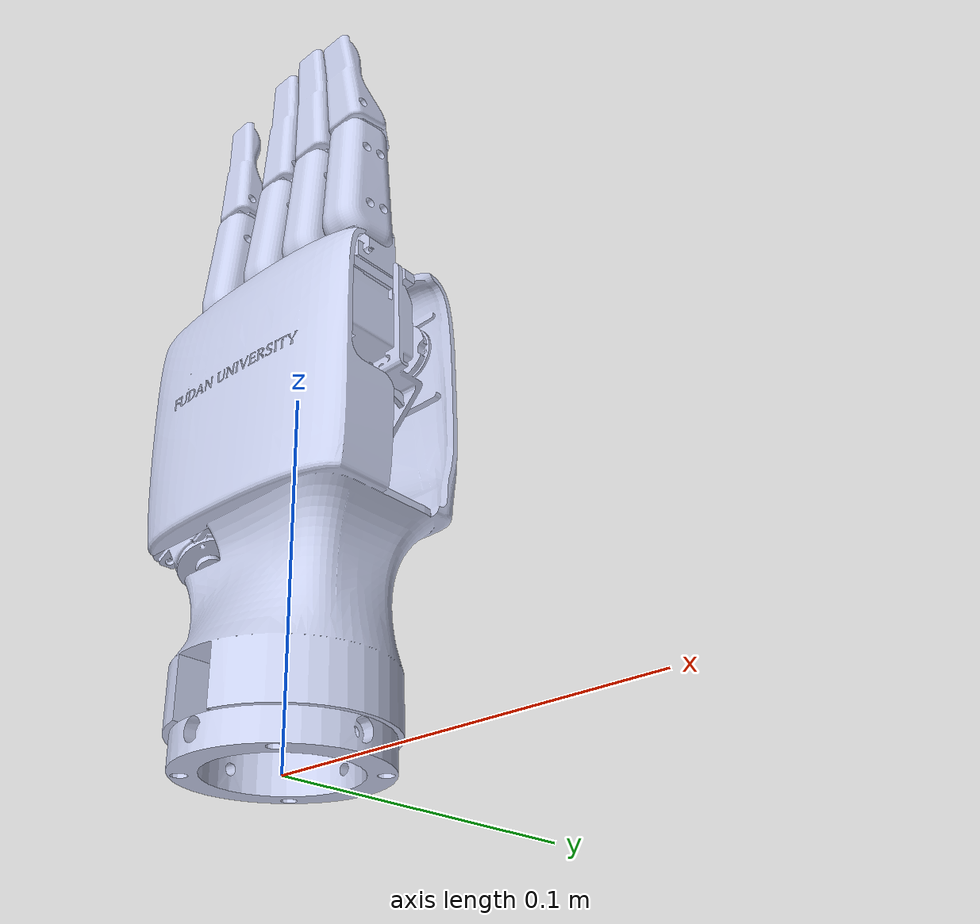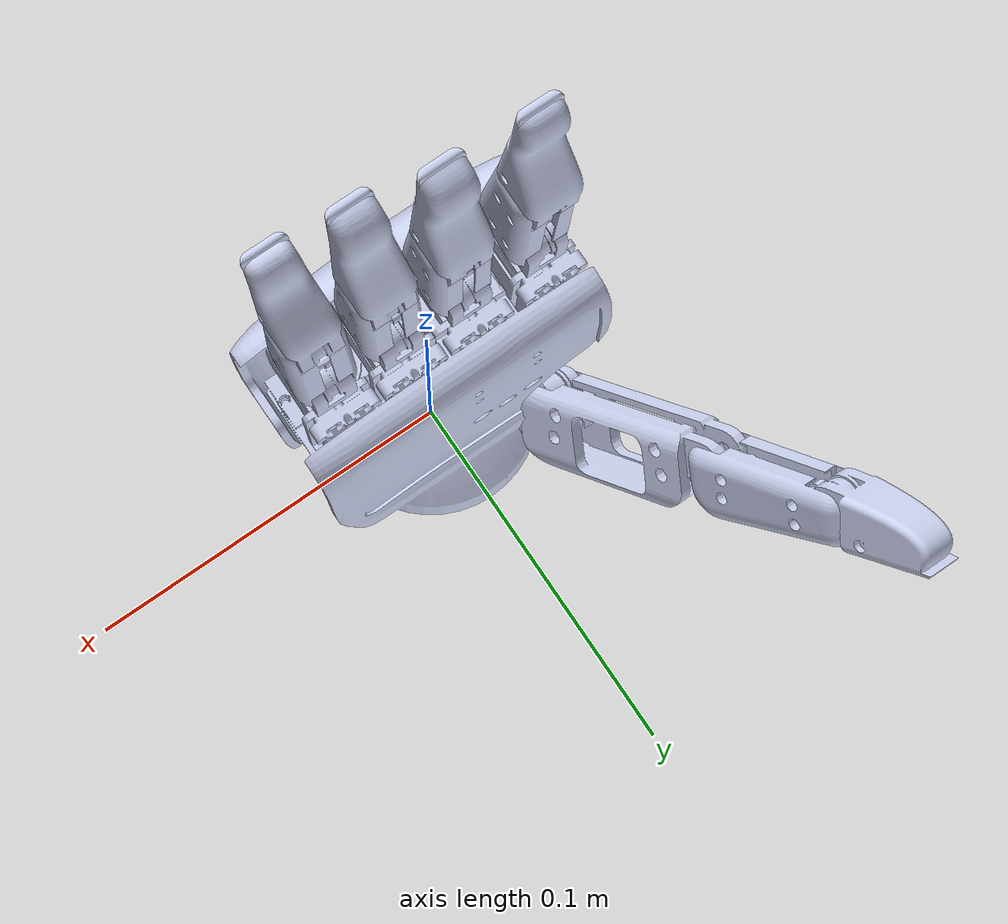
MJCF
<mujoco model="folding_hand_right">
  <default>
    <joint limited="true" damping="1" armature="0.0002" frictionloss="0.01" />
    <geom solimp="0.9 0.95 0.001" solref="0.01 0.1" />
    <motor ctrllimited="true" />
    <equality solref="0.001 2" />
    <default class="visualgeom">
      <geom material="right_hand_material" condim="1" contype="0" conaffinity="0" />
    </default>
  </default>

  <compiler angle="radian" meshdir="meshes" eulerseq="zyx" autolimits="true" />

  <asset>
    <material name="right_hand_material" rgba="0.792156862745098 0.819607843137255 0.933333333333333 1" />
    <material name="default_material" rgba="0.7 0.7 0.7 1" />
    <mesh name="base_link.STL" file="base_link.STL" />
    <mesh name="ff_1.STL" file="ff_1.STL" />
    <mesh name="ff_2.STL" file="ff_2.STL" />
    <mesh name="ff_3.STL" file="ff_3.STL" />
    <mesh name="mf_1.STL" file="mf_1.STL" />
    <mesh name="mf_2.STL" file="mf_2.STL" />
    <mesh name="rf_1.STL" file="rf_1.STL" />
    <mesh name="rf_2.STL" file="rf_2.STL" />
    <mesh name="rf_3.STL" file="rf_3.STL" />
    <mesh name="lf_1.STL" file="lf_1.STL" />
    <mesh name="lf_2.STL" file="lf_2.STL" />
    <mesh name="lf_3.STL" file="lf_3.STL" />
    <mesh name="th_1.STL" file="th_1.STL" />
    <mesh name="th_2.STL" file="th_2.STL" />
    <mesh name="th_3.STL" file="th_3.STL" />
    <mesh name="th_4.STL" file="th_4.STL" />
  </asset>

  <worldbody>
    <body name="base_link" pos="0 0 0" quat="1 0 0 0">
        <inertial pos="0.00276118404102101 -0.00285774223692806 0.0615605479553047" quat="1.0 0.0 0.0 0.0" mass="0.103375780582453" diaginertia="3.11593509491742e-05 4.5003240518971e-05 3.85374175725486e-05" />
        <geom name="base_link_visual_0" pos="0 0 0" quat="1.0 0.0 0.0 0.0" material="right_hand_material" type="mesh" mesh="base_link.STL" />
        <body name="th_1" pos="-0.0079 -0.001045 0.064" quat="1.3492435731251315e-11 -3.6732051033217936e-06 0.9999999999865075 -3.6732051033217936e-06">
          <joint name="th_1_joint" type="hinge" range="0 1.5708" axis="0 1 0" />
          <inertial pos="0.0137524610845284 -0.00388692531484706 -0.00399815691934079" quat="1.0 0.0 0.0 0.0" mass="0.0085862447602651" diaginertia="4.86393167138675e-07 4.66658280466237e-07 5.71403929448824e-07" />
          <geom name="th_1_visual_0" pos="0 0 0" quat="1.0 0.0 0.0 0.0" material="right_hand_material" type="mesh" mesh="th_1.STL" />
          <body name="th_2" pos="0.01364 0.02189 -0.0017481" quat="0.6142010687513615 -0.6142033248420053 0.3503643967958696 0.3503656837585236">
            <joint name="th_2_joint" type="hinge" range="0 1.22173" axis="0 1 0" />
            <inertial pos="0.0127004115106669 0.000899925159810369 0.021103551602678" quat="1.0 0.0 0.0 0.0" mass="0.00484700233885311" diaginertia="7.68869476994104e-07 1.55377159306767e-06 1.02745220346099e-06" />
            <geom name="th_2_visual_0" pos="0 0 0" quat="1.0 0.0 0.0 0.0" material="right_hand_material" type="mesh" mesh="th_2.STL" />
            <body name="th_3" pos="0.036109 -0.0001 0.036072" quat="1.0 0.0 0.0 0.0">
              <joint name="th_3_joint" type="hinge" range="0 3.1415926" axis="0 1 0" />
              <inertial pos="0.00799399367852193 0.00100001344203523 0.0145817963066114" quat="1.0 0.0 0.0 0.0" mass="0.0036807341199548" diaginertia="2.80148855351827e-07 4.75376345730277e-07 3.64623294368966e-07" />
              <geom name="th_3_visual_0" pos="0 0 0" quat="1.0 0.0 0.0 0.0" material="right_hand_material" type="mesh" mesh="th_3.STL" />
              <body name="th_4" pos="0.025359 0.0001 0.024123" quat="1.0 0.0 0.0 0.0">
                <joint name="th_4_joint" type="hinge" range="0 3.1415926" axis="0 1 0" />
                <inertial pos="0.00729876168262759 0.00109078776438153 0.0100298513252921" quat="1.0 0.0 0.0 0.0" mass="0.00281885774752767" diaginertia="1.52207777642241e-07 1.90128277126092e-07 1.03333952624484e-07" />
                <geom name="th_4_visual_0" pos="0 0 0" quat="1.0 0.0 0.0 0.0" material="right_hand_material" type="mesh" mesh="th_4.STL" />
              </body>
            </body>
          </body>
        </body>
        <body name="ff_1" pos="-0.0079 0.003355 0.064" quat="1.3492435731251315e-11 -3.6732051033217936e-06 0.9999999999865075 -3.6732051033217936e-06">
          <joint name="ff_1_joint" type="hinge" range="0 1.5708" axis="0 -1 0" />
          <inertial pos="0.0174276113143449 -0.0025880306270465 -0.051026172322912" quat="1.0 0.0 0.0 0.0" mass="0.00800116450103895" diaginertia="6.16375907626336e-07 7.00497772286988e-07 2.41679032104396e-07" />
          <geom name="ff_1_visual_0" pos="0 0 0" quat="1.0 0.0 0.0 0.0" material="right_hand_material" type="mesh" mesh="ff_1.STL" />
          <body name="ff_2" pos="0.020121 -0.0025 -0.075996" quat="0.5072199822139389 -0.507221845340388 0.49267235871351633 0.49267416840346234">
            <joint name="ff_2_joint" type="hinge" range="0 3.1415926" axis="0 -1 0" />
            <inertial pos="0.0158422609179284 0.00109998639127984 -0.00505523801864458" quat="1.0 0.0 0.0 0.0" mass="0.00368074206825828" diaginertia="1.74635425164805e-07 4.75377212779051e-07 4.70138993869148e-07" />
            <geom name="ff_2_visual_0" pos="0 0 0" quat="1.0 0.0 0.0 0.0" material="right_hand_material" type="mesh" mesh="ff_2.STL" />
            <body name="ff_3" pos="0.035 0.0003 0" quat="1.0 0.0 0.0 0.0">
              <joint name="ff_3_joint" type="hinge" range="0 3.1415926" axis="0 -1 0" />
              <inertial pos="0.0178367732030435 0.000999402970096486 -0.0022372319913799" quat="1.0 0.0 0.0 0.0" mass="0.00404959762041178" diaginertia="9.09224979928097e-08 6.26639694894412e-07 6.23321071228333e-07" />
              <geom name="ff_3_visual_0" pos="0 0 0" quat="1.0 0.0 0.0 0.0" material="right_hand_material" type="mesh" mesh="ff_3.STL" />
            </body>
          </body>
        </body>
        <body name="mf_1" pos="-0.009 0.000855 0.14055" quat="-0.4999999999966269 0.4999981633974483 0.5000018366025516 0.4999999999966269">
          <joint name="mf_1_joint" type="hinge" range="0 3.1415926" axis="0 -1 0" />
          <inertial pos="0.0158422601570955 0.00129998597816512 -0.0050552380419905" quat="1.0 0.0 0.0 0.0" mass="0.00368074201522147" diaginertia="1.74635406284412e-07 4.75377216872989e-07 4.70139016490944e-07" />
          <geom name="mf_1_visual_0" pos="0 0 0" quat="1.0 0.0 0.0 0.0" material="right_hand_material" type="mesh" mesh="mf_1.STL" />
          <body name="mf_2" pos="0.035 0.0006 0" quat="1.0 0.0 0.0 0.0">
            <joint name="mf_2_joint" type="hinge" range="0 3.1415926" axis="0 -1 0" />
            <inertial pos="0.0216169098719861 0.000904419663191184 -0.00217715663925655" quat="1.0 0.0 0.0 0.0" mass="0.00502242897630229" diaginertia="1.06662106139777e-07 9.59144418477493e-07 9.60297532986314e-07" />
            <geom name="mf_2_visual_0" pos="0 0 0" quat="1.0 0.0 0.0 0.0" material="right_hand_material" type="mesh" mesh="mf_2.STL" />
          </body>
        </body>
        <body name="rf_1" pos="-0.0079 0.012155 0.064" quat="1.3492435731251315e-11 -3.6732051033217936e-06 0.9999999999865075 -3.6732051033217936e-06">
          <joint name="rf_1_joint" type="hinge" range="0 1.5708" axis="0 1 0" />
          <inertial pos="-0.0159906401844529 -0.0105600115967382 -0.051516391608172" quat="1.0 0.0 0.0 0.0" mass="0.00800969565306044" diaginertia="6.31281723456019e-07 6.95805064467012e-07 2.40136855524572e-07" />
          <geom name="rf_1_visual_0" pos="0 0 0" quat="1.0 0.0 0.0 0.0" material="right_hand_material" type="mesh" mesh="rf_1.STL" />
          <body name="rf_2" pos="-0.0161 -0.0113 -0.07655" quat="-0.4999999999966269 0.4999981633974483 -0.5000018366025516 -0.4999999999966269">
            <joint name="rf_2_joint" type="hinge" range="0 3.1415926" axis="0 -1 0" />
            <inertial pos="0.0156935934157024 0.00109998713025121 -0.00549943217420239" quat="1.0 0.0 0.0 0.0" mass="0.0036807366322041" diaginertia="1.72904144168496e-07 4.75376819501147e-07 4.71869255601023e-07" />
            <geom name="rf_2_visual_0" pos="0 0 0" quat="1.0 0.0 0.0 0.0" material="right_hand_material" type="mesh" mesh="rf_2.STL" />
            <body name="rf_3" pos="0.034986 0.0004 -0.00098578" quat="1.0 0.0 0.0 0.0">
              <joint name="rf_3_joint" type="hinge" range="0 3.1415926" axis="0 -1 0" />
              <inertial pos="0.018265888885159 0.000904759770016556 -0.00370738520761145" quat="1.0 0.0 0.0 0.0" mass="0.00499342460902789" diaginertia="1.15277519199432e-07 7.52048559497963e-07 7.39864170899251e-07" />
              <geom name="rf_3_visual_0" pos="0 0 0" quat="1.0 0.0 0.0 0.0" material="right_hand_material" type="mesh" mesh="rf_3.STL" />
            </body>
          </body>
        </body>
        <body name="lf_1" pos="-0.0079 0.016555 0.064" quat="1.3492435731251315e-11 -3.6732051033217936e-06 0.9999999999865075 -3.6732051033217936e-06">
          <joint name="lf_1_joint" type="hinge" range="0 1.5708" axis="0 1 0" />
          <inertial pos="-0.0312849510272932 -0.0140312936490971 -0.0502369136670625" quat="1.0 0.0 0.0 0.0" mass="0.00836089652615313" diaginertia="6.91312748704694e-07 9.37745860657525e-07 4.62303222321355e-07" />
          <geom name="lf_1_visual_0" pos="0 0 0" quat="1.0 0.0 0.0 0.0" material="right_hand_material" type="mesh" mesh="lf_1.STL" />
          <body name="lf_2" pos="-0.0329 -0.0157 -0.07655" quat="-0.4999999999966269 0.4999981633974483 -0.5000018366025516 -0.4999999999966269">
            <joint name="lf_2_joint" type="hinge" range="0 3.1415926" axis="0 -1 0" />
            <inertial pos="0.0155519171680911 0.000899988158834936 -0.00588816520024507" quat="1.0 0.0 0.0 0.0" mass="0.0036807319075368" diaginertia="1.71769313017517e-07 4.75376475908662e-07 4.73003192113371e-07" />
            <geom name="lf_2_visual_0" pos="0 0 0" quat="1.0 0.0 0.0 0.0" material="right_hand_material" type="mesh" mesh="lf_2.STL" />
            <body name="lf_3" pos="0.034951 -0.0001 -0.0018559" quat="1.0 0.0 0.0 0.0">
              <joint name="lf_3_joint" type="hinge" range="0 3.1415926" axis="0 -1 0" />
              <inertial pos="0.0136373816869327 0.000999137783326609 -0.00495198647252044" quat="1.0 0.0 0.0 0.0" mass="0.00323429827183613" diaginertia="9.71311360656645e-08 3.22738473259161e-07 2.95824799844708e-07" />
              <geom name="lf_3_visual_0" pos="0 0 0" quat="1.0 0.0 0.0 0.0" material="right_hand_material" type="mesh" mesh="lf_3.STL" />
            </body>
          </body>
        </body>
    </body>
  </worldbody>

  <contact>
    <exclude body1="base_link" body2="th_1" />
    <exclude body1="base_link" body2="ff_1" />
    <exclude body1="base_link" body2="mf_1" />
    <exclude body1="base_link" body2="rf_1" />
    <exclude body1="base_link" body2="lf_1" />

    <exclude body1="base_link" body2="th_2" />
    <exclude body1="base_link" body2="ff_2" />
    <exclude body1="base_link" body2="mf_2" />
    <exclude body1="base_link" body2="rf_2" />
    <exclude body1="base_link" body2="lf_2" />

    <exclude body1="th_1" body2="ff_1" />
    <exclude body1="th_1" body2="mf_1" />
    <exclude body1="th_1" body2="rf_1" />
    <exclude body1="th_1" body2="lf_1" />
    <exclude body1="ff_1" body2="mf_1" />
    <exclude body1="ff_1" body2="rf_1" />
    <exclude body1="ff_1" body2="lf_1" />
    <exclude body1="mf_1" body2="rf_1" />
    <exclude body1="mf_1" body2="lf_1" />
    <exclude body1="rf_1" body2="lf_1" />

    <exclude body1="th_1" body2="th_2" />
    <exclude body1="th_2" body2="th_3" />
    <exclude body1="th_3" body2="th_4" />
    <exclude body1="ff_1" body2="ff_2" />
    <exclude body1="ff_2" body2="ff_3" />
    <exclude body1="mf_1" body2="mf_2" />
    <exclude body1="rf_1" body2="rf_2" />
    <exclude body1="rf_2" body2="rf_3" />
    <exclude body1="lf_1" body2="lf_2" />
    <exclude body1="lf_2" body2="lf_3" />
  </contact>

  <equality>
    <joint name="rf_1_link" joint1="rf_1_joint" joint2="ff_1_joint" polycoef="0 1 0 0 0" />
    <joint name="lf_1_link" joint1="lf_1_joint" joint2="ff_1_joint" polycoef="0 2 0 0 0" />
  </equality>

  <tendon>
    <fixed name="th">
      <joint joint="th_2_joint" coef="0.5" />
      <joint joint="th_3_joint" coef="0.8" />
      <joint joint="th_4_joint" coef="0.8" />
    </fixed>
    <fixed name="ff">
      <joint joint="ff_2_joint" coef="1" />
      <joint joint="ff_3_joint" coef="1" />
    </fixed>
    <fixed name="mf">
      <joint joint="mf_1_joint" coef="1" />
      <joint joint="mf_2_joint" coef="1" />
    </fixed>
    <fixed name="rf">
      <joint joint="rf_2_joint" coef="1" />
      <joint joint="rf_3_joint" coef="1" />
    </fixed>
    <fixed name="lf">
      <joint joint="lf_2_joint" coef="1" />
      <joint joint="lf_3_joint" coef="1" />
    </fixed>
  </tendon>

  <actuator>
    <position name="plam_th" joint="th_1_joint" kp="400" ctrlrange="0 1.5708" forcerange="-5 5" />
    <position name="th" tendon="th" kp="400" ctrlrange="0 1" forcerange="-5 5" />

    <position name="plam_other" joint="ff_1_joint" kp="400" ctrlrange="0 1.5708" forcerange="-5 5" />
    <position name="ff" tendon="ff" kp="400" ctrlrange="0 3.1415926" forcerange="-5 5" />

    <position name="mf" tendon="mf" kp="400" ctrlrange="0 3.1415926" forcerange="-5 5" />

    <position name="rf" tendon="rf" kp="400" ctrlrange="0 3.1415926" forcerange="-5 5" />

    <position name="lf" tendon="lf" kp="400" ctrlrange="0 3.1415926" forcerange="-5 5" />
  </actuator>
</mujoco>
